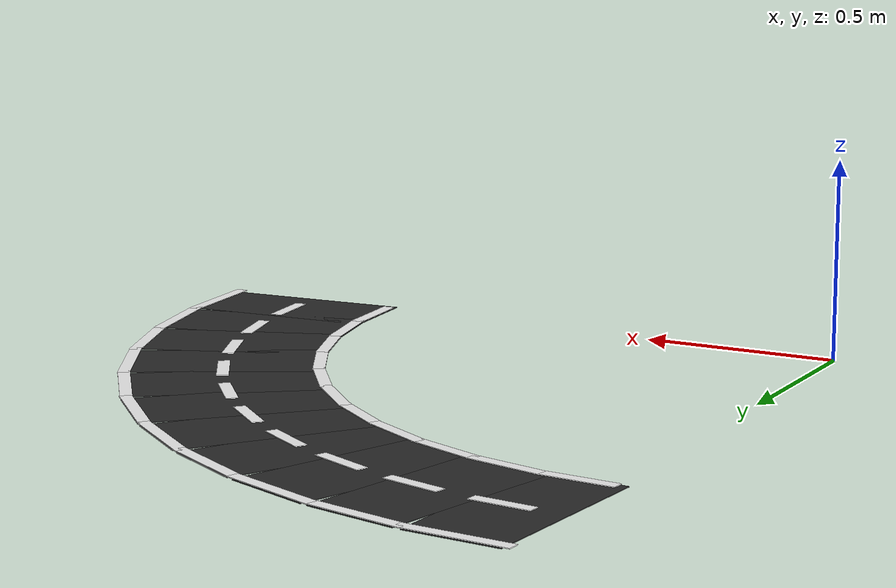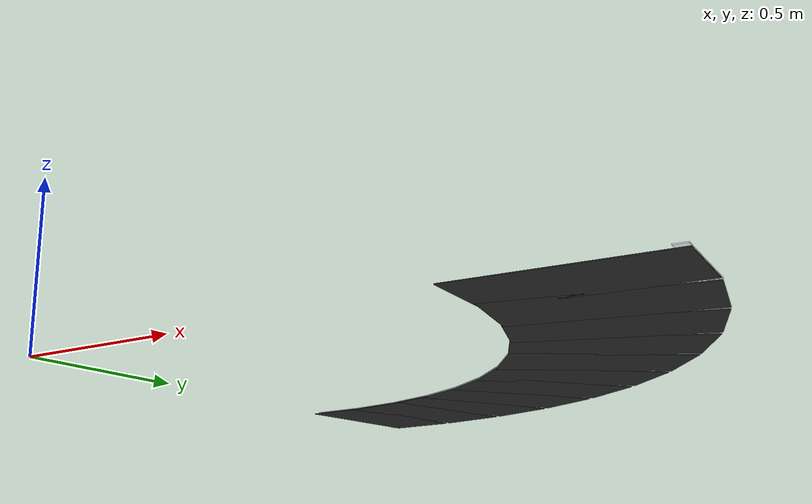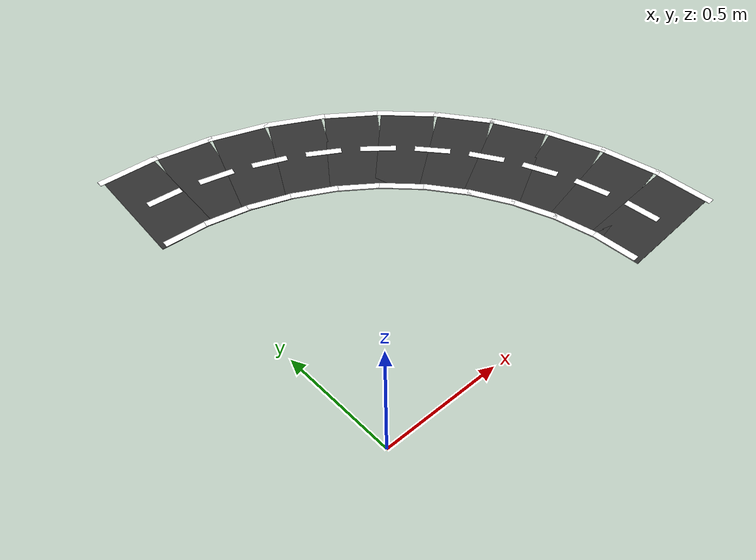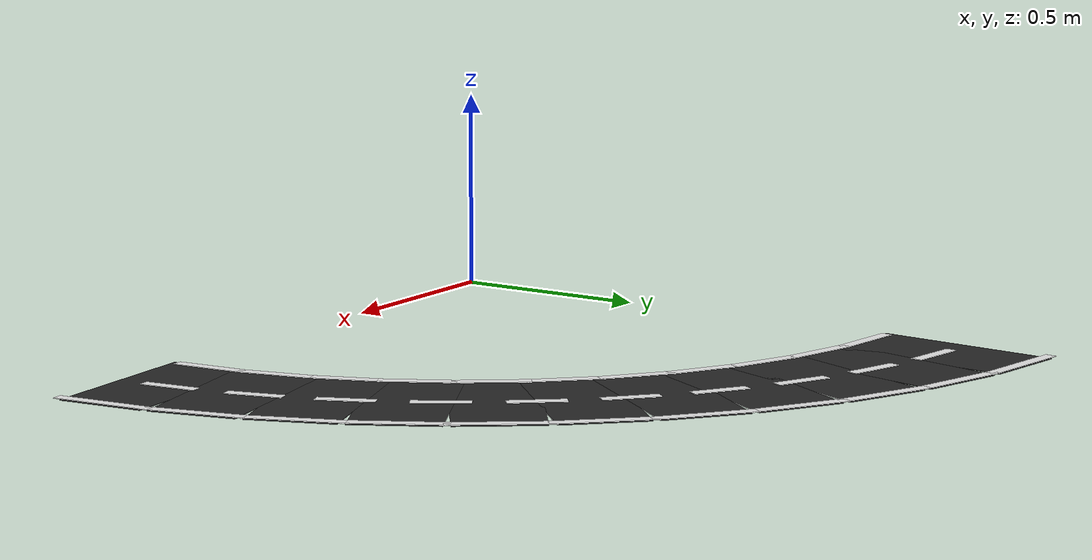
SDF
<?xml version="1.0"?>
<sdf version="1.6">
  <model name="track_arc_90">
    <static>true</static>
    <link name="link">
      <visual name="v001">
        <pose>1.49618 0.10701 0.00100 0 0 1.64220</pose>
        <geometry>
          <box>
            <size>0.23134 0.50000 0.00200</size>
          </box>
        </geometry>
        <material>
          <ambient>0.180 0.180 0.180 1</ambient>
          <diffuse>0.180 0.180 0.180 1</diffuse>
          <specular>0.05 0.05 0.05 1</specular>
        </material>
      </visual>
      <visual name="v002">
        <pose>1.46572 0.31885 0.00100 0 0 1.78500</pose>
        <geometry>
          <box>
            <size>0.23134 0.50000 0.00200</size>
          </box>
        </geometry>
        <material>
          <ambient>0.180 0.180 0.180 1</ambient>
          <diffuse>0.180 0.180 0.180 1</diffuse>
          <specular>0.05 0.05 0.05 1</specular>
        </material>
      </visual>
      <visual name="v003">
        <pose>1.40542 0.52420 0.00100 0 0 1.92780</pose>
        <geometry>
          <box>
            <size>0.23134 0.50000 0.00200</size>
          </box>
        </geometry>
        <material>
          <ambient>0.180 0.180 0.180 1</ambient>
          <diffuse>0.180 0.180 0.180 1</diffuse>
          <specular>0.05 0.05 0.05 1</specular>
        </material>
      </visual>
      <visual name="v004">
        <pose>1.31652 0.71887 0.00100 0 0 2.07060</pose>
        <geometry>
          <box>
            <size>0.23134 0.50000 0.00200</size>
          </box>
        </geometry>
        <material>
          <ambient>0.180 0.180 0.180 1</ambient>
          <diffuse>0.180 0.180 0.180 1</diffuse>
          <specular>0.05 0.05 0.05 1</specular>
        </material>
      </visual>
      <visual name="v005">
        <pose>1.20081 0.89892 0.00100 0 0 2.21339</pose>
        <geometry>
          <box>
            <size>0.23134 0.50000 0.00200</size>
          </box>
        </geometry>
        <material>
          <ambient>0.180 0.180 0.180 1</ambient>
          <diffuse>0.180 0.180 0.180 1</diffuse>
          <specular>0.05 0.05 0.05 1</specular>
        </material>
      </visual>
      <visual name="v006">
        <pose>1.06066 1.06066 0.00100 0 0 2.35619</pose>
        <geometry>
          <box>
            <size>0.23134 0.50000 0.00200</size>
          </box>
        </geometry>
        <material>
          <ambient>0.180 0.180 0.180 1</ambient>
          <diffuse>0.180 0.180 0.180 1</diffuse>
          <specular>0.05 0.05 0.05 1</specular>
        </material>
      </visual>
      <visual name="v007">
        <pose>0.89892 1.20081 0.00100 0 0 2.49899</pose>
        <geometry>
          <box>
            <size>0.23134 0.50000 0.00200</size>
          </box>
        </geometry>
        <material>
          <ambient>0.180 0.180 0.180 1</ambient>
          <diffuse>0.180 0.180 0.180 1</diffuse>
          <specular>0.05 0.05 0.05 1</specular>
        </material>
      </visual>
      <visual name="v008">
        <pose>0.71887 1.31652 0.00100 0 0 2.64179</pose>
        <geometry>
          <box>
            <size>0.23134 0.50000 0.00200</size>
          </box>
        </geometry>
        <material>
          <ambient>0.180 0.180 0.180 1</ambient>
          <diffuse>0.180 0.180 0.180 1</diffuse>
          <specular>0.05 0.05 0.05 1</specular>
        </material>
      </visual>
      <visual name="v009">
        <pose>0.52420 1.40542 0.00100 0 0 2.78459</pose>
        <geometry>
          <box>
            <size>0.23134 0.50000 0.00200</size>
          </box>
        </geometry>
        <material>
          <ambient>0.180 0.180 0.180 1</ambient>
          <diffuse>0.180 0.180 0.180 1</diffuse>
          <specular>0.05 0.05 0.05 1</specular>
        </material>
      </visual>
      <visual name="v010">
        <pose>0.31885 1.46572 0.00100 0 0 2.92739</pose>
        <geometry>
          <box>
            <size>0.23134 0.50000 0.00200</size>
          </box>
        </geometry>
        <material>
          <ambient>0.180 0.180 0.180 1</ambient>
          <diffuse>0.180 0.180 0.180 1</diffuse>
          <specular>0.05 0.05 0.05 1</specular>
        </material>
      </visual>
      <visual name="v011">
        <pose>0.10701 1.49618 0.00100 0 0 3.07019</pose>
        <geometry>
          <box>
            <size>0.23134 0.50000 0.00200</size>
          </box>
        </geometry>
        <material>
          <ambient>0.180 0.180 0.180 1</ambient>
          <diffuse>0.180 0.180 0.180 1</diffuse>
          <specular>0.05 0.05 0.05 1</specular>
        </material>
      </visual>
      <visual name="v012">
        <pose>1.73058 0.12377 0.00400 0 0 1.64220</pose>
        <geometry>
          <box>
            <size>0.26758 0.03000 0.00200</size>
          </box>
        </geometry>
        <material>
          <ambient>1.000 1.000 1.000 1</ambient>
          <diffuse>1.000 1.000 1.000 1</diffuse>
          <specular>0.05 0.05 0.05 1</specular>
        </material>
      </visual>
      <visual name="v013">
        <pose>1.69535 0.36880 0.00400 0 0 1.78500</pose>
        <geometry>
          <box>
            <size>0.26758 0.03000 0.00200</size>
          </box>
        </geometry>
        <material>
          <ambient>1.000 1.000 1.000 1</ambient>
          <diffuse>1.000 1.000 1.000 1</diffuse>
          <specular>0.05 0.05 0.05 1</specular>
        </material>
      </visual>
      <visual name="v014">
        <pose>1.62561 0.60632 0.00400 0 0 1.92780</pose>
        <geometry>
          <box>
            <size>0.26758 0.03000 0.00200</size>
          </box>
        </geometry>
        <material>
          <ambient>1.000 1.000 1.000 1</ambient>
          <diffuse>1.000 1.000 1.000 1</diffuse>
          <specular>0.05 0.05 0.05 1</specular>
        </material>
      </visual>
      <visual name="v015">
        <pose>1.52277 0.83150 0.00400 0 0 2.07060</pose>
        <geometry>
          <box>
            <size>0.26758 0.03000 0.00200</size>
          </box>
        </geometry>
        <material>
          <ambient>1.000 1.000 1.000 1</ambient>
          <diffuse>1.000 1.000 1.000 1</diffuse>
          <specular>0.05 0.05 0.05 1</specular>
        </material>
      </visual>
      <visual name="v016">
        <pose>1.38894 1.03975 0.00400 0 0 2.21339</pose>
        <geometry>
          <box>
            <size>0.26758 0.03000 0.00200</size>
          </box>
        </geometry>
        <material>
          <ambient>1.000 1.000 1.000 1</ambient>
          <diffuse>1.000 1.000 1.000 1</diffuse>
          <specular>0.05 0.05 0.05 1</specular>
        </material>
      </visual>
      <visual name="v017">
        <pose>1.22683 1.22683 0.00400 0 0 2.35619</pose>
        <geometry>
          <box>
            <size>0.26758 0.03000 0.00200</size>
          </box>
        </geometry>
        <material>
          <ambient>1.000 1.000 1.000 1</ambient>
          <diffuse>1.000 1.000 1.000 1</diffuse>
          <specular>0.05 0.05 0.05 1</specular>
        </material>
      </visual>
      <visual name="v018">
        <pose>1.03975 1.38894 0.00400 0 0 2.49899</pose>
        <geometry>
          <box>
            <size>0.26758 0.03000 0.00200</size>
          </box>
        </geometry>
        <material>
          <ambient>1.000 1.000 1.000 1</ambient>
          <diffuse>1.000 1.000 1.000 1</diffuse>
          <specular>0.05 0.05 0.05 1</specular>
        </material>
      </visual>
      <visual name="v019">
        <pose>0.83150 1.52277 0.00400 0 0 2.64179</pose>
        <geometry>
          <box>
            <size>0.26758 0.03000 0.00200</size>
          </box>
        </geometry>
        <material>
          <ambient>1.000 1.000 1.000 1</ambient>
          <diffuse>1.000 1.000 1.000 1</diffuse>
          <specular>0.05 0.05 0.05 1</specular>
        </material>
      </visual>
      <visual name="v020">
        <pose>0.60632 1.62561 0.00400 0 0 2.78459</pose>
        <geometry>
          <box>
            <size>0.26758 0.03000 0.00200</size>
          </box>
        </geometry>
        <material>
          <ambient>1.000 1.000 1.000 1</ambient>
          <diffuse>1.000 1.000 1.000 1</diffuse>
          <specular>0.05 0.05 0.05 1</specular>
        </material>
      </visual>
      <visual name="v021">
        <pose>0.36880 1.69535 0.00400 0 0 2.92739</pose>
        <geometry>
          <box>
            <size>0.26758 0.03000 0.00200</size>
          </box>
        </geometry>
        <material>
          <ambient>1.000 1.000 1.000 1</ambient>
          <diffuse>1.000 1.000 1.000 1</diffuse>
          <specular>0.05 0.05 0.05 1</specular>
        </material>
      </visual>
      <visual name="v022">
        <pose>0.12377 1.73058 0.00400 0 0 3.07019</pose>
        <geometry>
          <box>
            <size>0.26758 0.03000 0.00200</size>
          </box>
        </geometry>
        <material>
          <ambient>1.000 1.000 1.000 1</ambient>
          <diffuse>1.000 1.000 1.000 1</diffuse>
          <specular>0.05 0.05 0.05 1</specular>
        </material>
      </visual>
      <visual name="v023">
        <pose>1.26178 0.09024 0.00400 0 0 1.64220</pose>
        <geometry>
          <box>
            <size>0.19509 0.03000 0.00200</size>
          </box>
        </geometry>
        <material>
          <ambient>1.000 1.000 1.000 1</ambient>
          <diffuse>1.000 1.000 1.000 1</diffuse>
          <specular>0.05 0.05 0.05 1</specular>
        </material>
      </visual>
      <visual name="v024">
        <pose>1.23609 0.26890 0.00400 0 0 1.78500</pose>
        <geometry>
          <box>
            <size>0.19509 0.03000 0.00200</size>
          </box>
        </geometry>
        <material>
          <ambient>1.000 1.000 1.000 1</ambient>
          <diffuse>1.000 1.000 1.000 1</diffuse>
          <specular>0.05 0.05 0.05 1</specular>
        </material>
      </visual>
      <visual name="v025">
        <pose>1.18524 0.44207 0.00400 0 0 1.92780</pose>
        <geometry>
          <box>
            <size>0.19509 0.03000 0.00200</size>
          </box>
        </geometry>
        <material>
          <ambient>1.000 1.000 1.000 1</ambient>
          <diffuse>1.000 1.000 1.000 1</diffuse>
          <specular>0.05 0.05 0.05 1</specular>
        </material>
      </visual>
      <visual name="v026">
        <pose>1.11026 0.60625 0.00400 0 0 2.07060</pose>
        <geometry>
          <box>
            <size>0.19509 0.03000 0.00200</size>
          </box>
        </geometry>
        <material>
          <ambient>1.000 1.000 1.000 1</ambient>
          <diffuse>1.000 1.000 1.000 1</diffuse>
          <specular>0.05 0.05 0.05 1</specular>
        </material>
      </visual>
      <visual name="v027">
        <pose>1.01268 0.75809 0.00400 0 0 2.21339</pose>
        <geometry>
          <box>
            <size>0.19509 0.03000 0.00200</size>
          </box>
        </geometry>
        <material>
          <ambient>1.000 1.000 1.000 1</ambient>
          <diffuse>1.000 1.000 1.000 1</diffuse>
          <specular>0.05 0.05 0.05 1</specular>
        </material>
      </visual>
      <visual name="v028">
        <pose>0.89449 0.89449 0.00400 0 0 2.35619</pose>
        <geometry>
          <box>
            <size>0.19509 0.03000 0.00200</size>
          </box>
        </geometry>
        <material>
          <ambient>1.000 1.000 1.000 1</ambient>
          <diffuse>1.000 1.000 1.000 1</diffuse>
          <specular>0.05 0.05 0.05 1</specular>
        </material>
      </visual>
      <visual name="v029">
        <pose>0.75809 1.01268 0.00400 0 0 2.49899</pose>
        <geometry>
          <box>
            <size>0.19509 0.03000 0.00200</size>
          </box>
        </geometry>
        <material>
          <ambient>1.000 1.000 1.000 1</ambient>
          <diffuse>1.000 1.000 1.000 1</diffuse>
          <specular>0.05 0.05 0.05 1</specular>
        </material>
      </visual>
      <visual name="v030">
        <pose>0.60625 1.11026 0.00400 0 0 2.64179</pose>
        <geometry>
          <box>
            <size>0.19509 0.03000 0.00200</size>
          </box>
        </geometry>
        <material>
          <ambient>1.000 1.000 1.000 1</ambient>
          <diffuse>1.000 1.000 1.000 1</diffuse>
          <specular>0.05 0.05 0.05 1</specular>
        </material>
      </visual>
      <visual name="v031">
        <pose>0.44207 1.18524 0.00400 0 0 2.78459</pose>
        <geometry>
          <box>
            <size>0.19509 0.03000 0.00200</size>
          </box>
        </geometry>
        <material>
          <ambient>1.000 1.000 1.000 1</ambient>
          <diffuse>1.000 1.000 1.000 1</diffuse>
          <specular>0.05 0.05 0.05 1</specular>
        </material>
      </visual>
      <visual name="v032">
        <pose>0.26890 1.23609 0.00400 0 0 2.92739</pose>
        <geometry>
          <box>
            <size>0.19509 0.03000 0.00200</size>
          </box>
        </geometry>
        <material>
          <ambient>1.000 1.000 1.000 1</ambient>
          <diffuse>1.000 1.000 1.000 1</diffuse>
          <specular>0.05 0.05 0.05 1</specular>
        </material>
      </visual>
      <visual name="v033">
        <pose>0.09024 1.26178 0.00400 0 0 3.07019</pose>
        <geometry>
          <box>
            <size>0.19509 0.03000 0.00200</size>
          </box>
        </geometry>
        <material>
          <ambient>1.000 1.000 1.000 1</ambient>
          <diffuse>1.000 1.000 1.000 1</diffuse>
          <specular>0.05 0.05 0.05 1</specular>
        </material>
      </visual>
      <visual name="v034">
        <pose>1.49318 0.14288 0.00400 0 0 1.66619</pose>
        <geometry>
          <box>
            <size>0.15000 0.03000 0.00200</size>
          </box>
        </geometry>
        <material>
          <ambient>1.000 1.000 1.000 1</ambient>
          <diffuse>1.000 1.000 1.000 1</diffuse>
          <specular>0.05 0.05 0.05 1</specular>
        </material>
      </visual>
      <visual name="v035">
        <pose>1.45384 0.36926 0.00400 0 0 1.81953</pose>
        <geometry>
          <box>
            <size>0.15000 0.03000 0.00200</size>
          </box>
        </geometry>
        <material>
          <ambient>1.000 1.000 1.000 1</ambient>
          <diffuse>1.000 1.000 1.000 1</diffuse>
          <specular>0.05 0.05 0.05 1</specular>
        </material>
      </visual>
      <visual name="v036">
        <pose>1.38038 0.58698 0.00400 0 0 1.97286</pose>
        <geometry>
          <box>
            <size>0.15000 0.03000 0.00200</size>
          </box>
        </geometry>
        <material>
          <ambient>1.000 1.000 1.000 1</ambient>
          <diffuse>1.000 1.000 1.000 1</diffuse>
          <specular>0.05 0.05 0.05 1</specular>
        </material>
      </visual>
      <visual name="v037">
        <pose>1.27454 0.79092 0.00400 0 0 2.12619</pose>
        <geometry>
          <box>
            <size>0.15000 0.03000 0.00200</size>
          </box>
        </geometry>
        <material>
          <ambient>1.000 1.000 1.000 1</ambient>
          <diffuse>1.000 1.000 1.000 1</diffuse>
          <specular>0.05 0.05 0.05 1</specular>
        </material>
      </visual>
      <visual name="v038">
        <pose>1.13878 0.97631 0.00400 0 0 2.27953</pose>
        <geometry>
          <box>
            <size>0.15000 0.03000 0.00200</size>
          </box>
        </geometry>
        <material>
          <ambient>1.000 1.000 1.000 1</ambient>
          <diffuse>1.000 1.000 1.000 1</diffuse>
          <specular>0.05 0.05 0.05 1</specular>
        </material>
      </visual>
      <visual name="v039">
        <pose>0.97631 1.13878 0.00400 0 0 2.43286</pose>
        <geometry>
          <box>
            <size>0.15000 0.03000 0.00200</size>
          </box>
        </geometry>
        <material>
          <ambient>1.000 1.000 1.000 1</ambient>
          <diffuse>1.000 1.000 1.000 1</diffuse>
          <specular>0.05 0.05 0.05 1</specular>
        </material>
      </visual>
      <visual name="v040">
        <pose>0.79092 1.27454 0.00400 0 0 2.58619</pose>
        <geometry>
          <box>
            <size>0.15000 0.03000 0.00200</size>
          </box>
        </geometry>
        <material>
          <ambient>1.000 1.000 1.000 1</ambient>
          <diffuse>1.000 1.000 1.000 1</diffuse>
          <specular>0.05 0.05 0.05 1</specular>
        </material>
      </visual>
      <visual name="v041">
        <pose>0.58698 1.38038 0.00400 0 0 2.73953</pose>
        <geometry>
          <box>
            <size>0.15000 0.03000 0.00200</size>
          </box>
        </geometry>
        <material>
          <ambient>1.000 1.000 1.000 1</ambient>
          <diffuse>1.000 1.000 1.000 1</diffuse>
          <specular>0.05 0.05 0.05 1</specular>
        </material>
      </visual>
      <visual name="v042">
        <pose>0.36926 1.45384 0.00400 0 0 2.89286</pose>
        <geometry>
          <box>
            <size>0.15000 0.03000 0.00200</size>
          </box>
        </geometry>
        <material>
          <ambient>1.000 1.000 1.000 1</ambient>
          <diffuse>1.000 1.000 1.000 1</diffuse>
          <specular>0.05 0.05 0.05 1</specular>
        </material>
      </visual>
      <visual name="v043">
        <pose>0.14288 1.49318 0.00400 0 0 3.04619</pose>
        <geometry>
          <box>
            <size>0.15000 0.03000 0.00200</size>
          </box>
        </geometry>
        <material>
          <ambient>1.000 1.000 1.000 1</ambient>
          <diffuse>1.000 1.000 1.000 1</diffuse>
          <specular>0.05 0.05 0.05 1</specular>
        </material>
      </visual>
    </link>
  </model>
</sdf>
